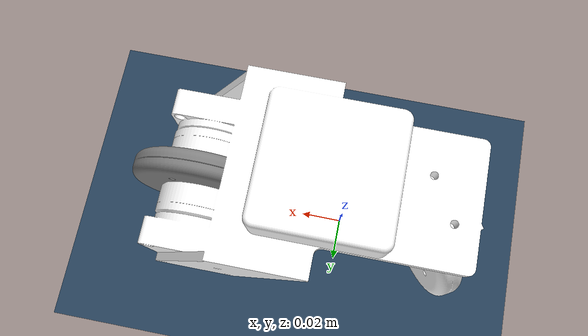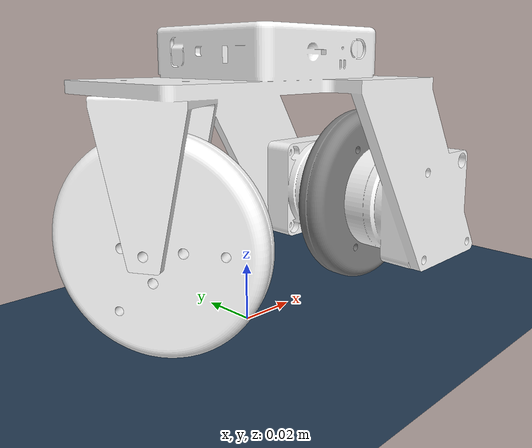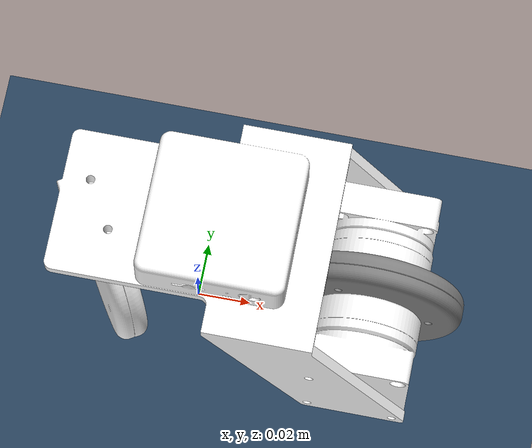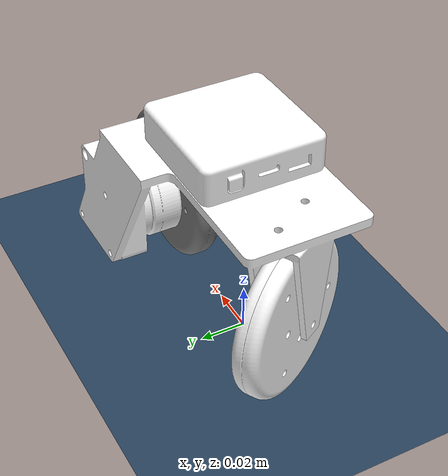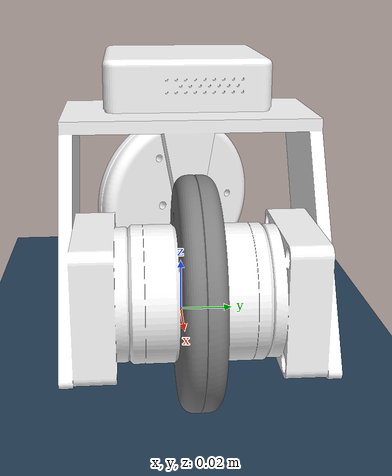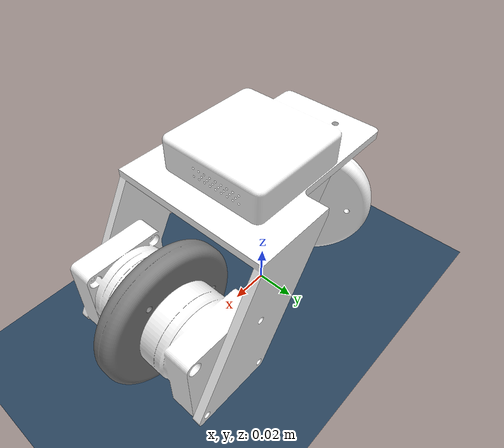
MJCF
<mujoco model="HBP_V2_5_mjcf scene">
  <include file="HBP_V2_5_mjcf.xml"/>

  <statistic center="0 0 0.000" extent="0.800000"/>

  <visual>
    <headlight diffuse="0.6 0.6 0.6" ambient="0.3 0.3 0.3" specular="0 0 0"/>
    <rgba haze="0.15 0.25 0.35 1"/>
    <global azimuth="-130" elevation="-20"/>
  </visual>

  <asset>
    <texture type="skybox" builtin="gradient" rgb1="0.3 0.5 0.7" rgb2="0 0 0" width="512" height="3072"/>
    <texture type="2d" name="groundplane" builtin="checker" mark="edge" rgb1="0.2 0.3 0.4" rgb2="0.1 0.2 0.3"
      markrgb="0.8 0.8 0.8" width="300" height="300"/>
    <material name="groundplane" texture="groundplane" texuniform="true" texrepeat="5 5" reflectance="0.2"/>
  </asset>

  <worldbody>
    <!-- Ground/Environment -->
    <light pos="0 0 1.5" dir="0 0 -1" directional="true"/>
    <geom name="floor" size="0 0 0.05" type="plane" material="groundplane" group="0"/>
  </worldbody>
</mujoco>

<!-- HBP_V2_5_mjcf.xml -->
<mujoco model="meshes_mjcf">
  <compiler angle="radian" meshdir="assets" autolimits="true" />

  <option timestep="0.001" iterations="30" cone="elliptic" impratio="100" />

  <default>
    <!-- textset -->
    <!-- text�[text�Fgroup=0 -->
    <default class="collision">
      <geom group="0"/>
    </default>
    <!-- text�Fgroup=1(text) -->
    <default class="visual">
      <geom contype="0" conaffinity="0" group="1"/>
    </default>
  </default>

  <asset>
    <material name="metal" rgba=".9 .95 .95 1" />
    <material name="black" rgba="0 0 0 1" />
    <material name="white" rgba="1 1 1 1" />
    <material name="gray" rgba="0.671705 0.692426 0.774270 1" />

    <mesh name="back-tire" file="back-tire.obj" />
    <mesh name="body" file="body.obj" />
    <mesh name="front-tire" file="front-tire.obj" />
  </asset>

  <worldbody>
    <body name="body_obj" pos="0 0 0.08">
      <freejoint />
      <geom class="visual" type="mesh" mesh="body" rgba="1.0 1.0 1.0 1.0"/>
      <geom type="mesh" mesh="body" group="0" />
      <inertial pos="0.042941 0.000014 -0.02614" mass="0.2438" diaginertia="2.999e-4 4.445e-4 3.941e-4" />
      <site name="imu_site" pos="0.01 0 0.004"/>

      <!-- back-tire -->
      <body name="back-tire" pos="0.065528 0.0 -0.045">
        <joint name="back_tire_pitch" type="hinge" pos="0 0 0" axis="0 1 0" limited="false" damping="0.00001" />
        <inertial pos="0.0 0.0 0.0" mass="0.021" diaginertia="6.595356e-6 1.2702637e-5 6.595358e-6" />
        <geom class="visual" type="mesh" mesh="back-tire"/>
        <geom type="mesh" mesh="back-tire" group="0"  friction="0.9 0.05 0.001" />
      </body>

      <!-- front-tire -->
      <body name="front-tire" pos="-0.035 0.0 -0.045" quat="0.866025291583566 0 0 -0.500000194337561">
        <joint name="front_tire_pitch" type="hinge" pos="0 0 0" axis="0 1 0" limited="false" damping="0.00001" />
        <inertial pos="0.0 0.0 0.0" mass="0.026" diaginertia="7.810778e-6 1.5042828e-5 7.810779e-6" />
        <geom class="visual" type="mesh" mesh="front-tire" rgba="1.0 1.0 1.0 1.0"/>
        <geom type="mesh" mesh="front-tire" group="0" friction="0.9 0.05 0.001"/>
      </body>
    </body>
  </worldbody>

  <actuator>
    <general name="back_tire_actuator" joint="back_tire_pitch"
            gear="1" forcelimited="true" forcerange="-0.042 0.042"
            dyntype="filter" dynprm="0.0055"
            gaintype="fixed" biastype="affine" biasprm="0 0 -0.000333"/>
  </actuator>

  <contact>
    <exclude body1="body_obj" body2="back-tire" />
    <exclude body1="body_obj" body2="front-tire" />
  </contact>

  <sensor>
    <accelerometer name="body_accel" site="imu_site" noise="0.0"/>
    <gyro name="body_gyro" site="imu_site" noise="0.0"/>
  </sensor>
</mujoco>
